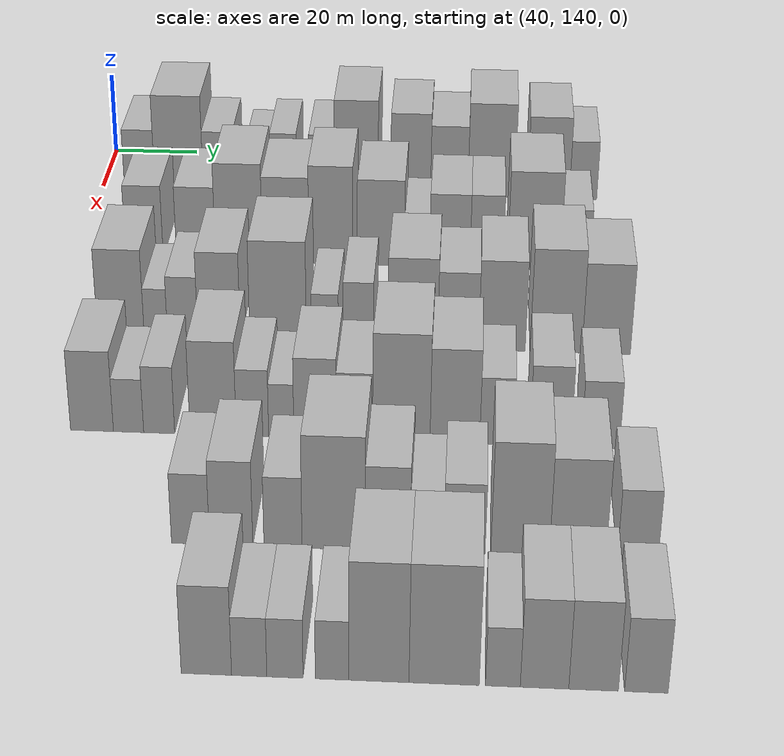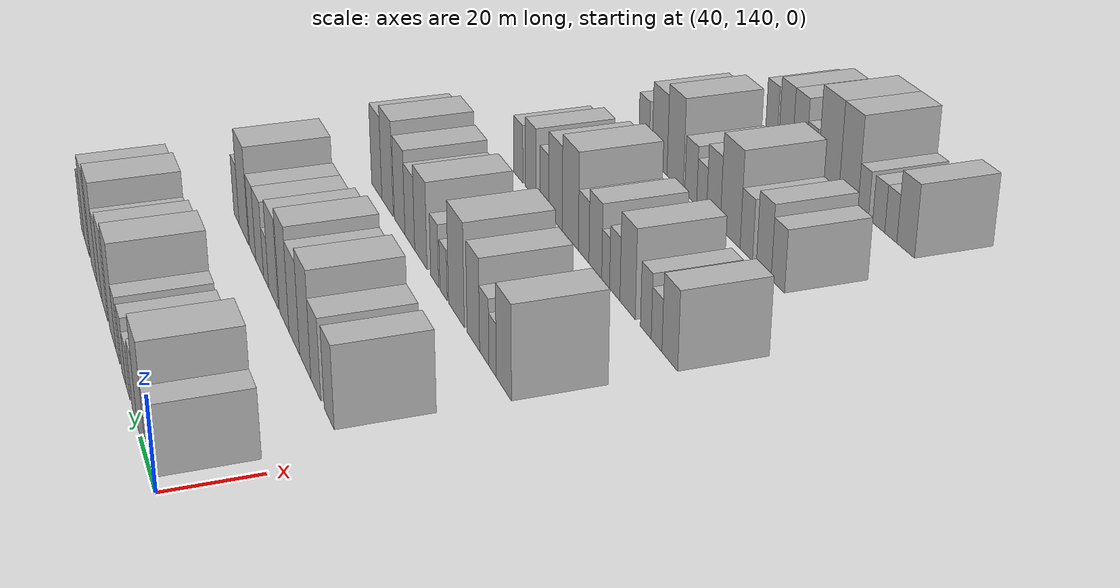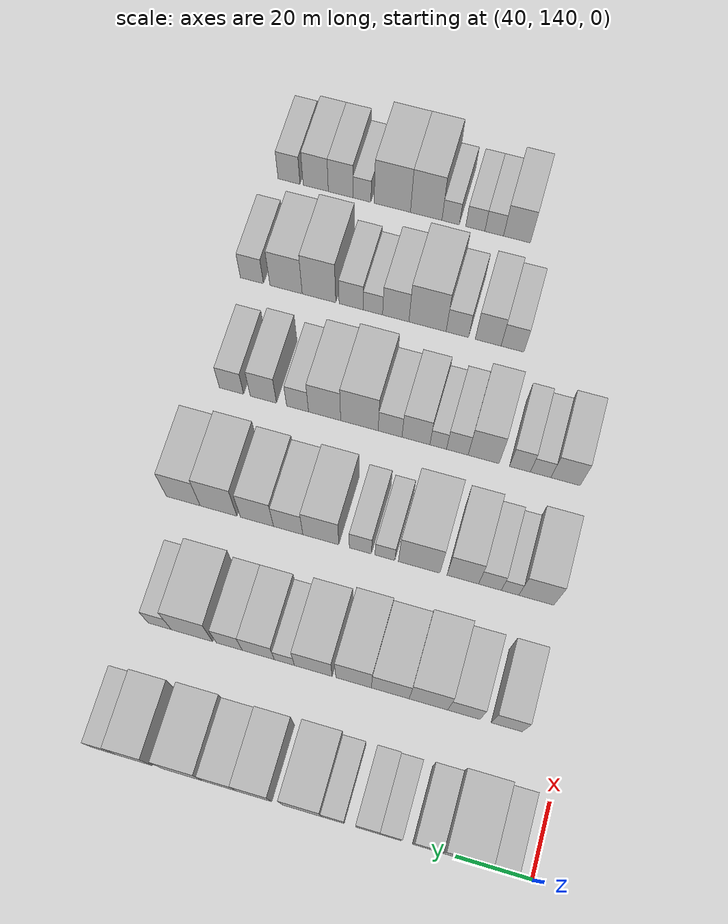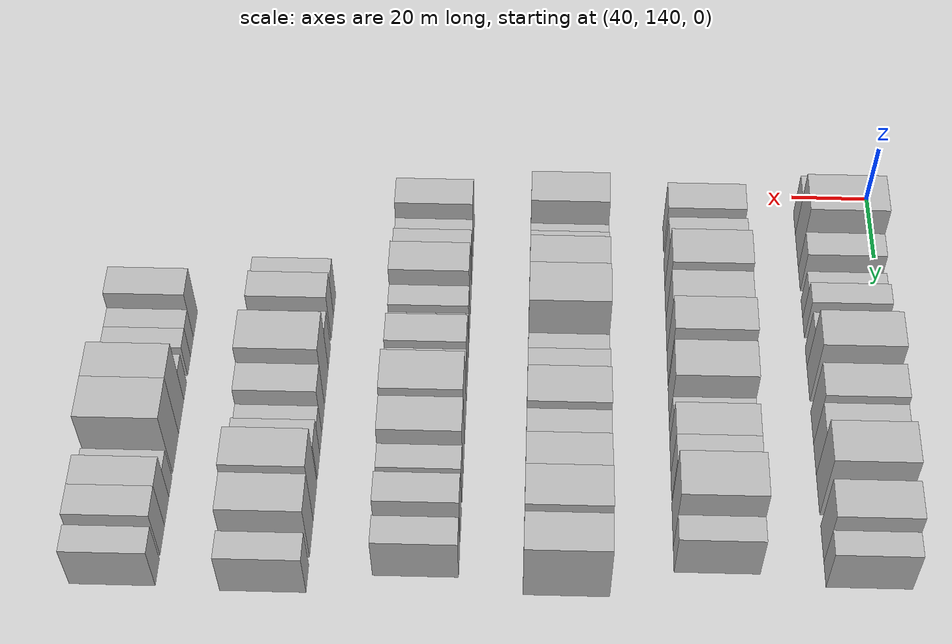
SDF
<sdf version="1.6">
 <world name="default">
  <model name="building_77">
   <static>1</static>
   <pose>50.0000 148.8166 0 0.000000 0.000000 0.000000</pose>
   <link name="link">
    <pose>0 0 7.50 0 0 0</pose>
    <collision name="collision"><geometry><box><size>20.0000 7.3474 15.0000</size></box></geometry></collision>
    <visual name="visual">
     <cast_shadows>0</cast_shadows>
     <geometry><box><size>20.0000 7.3474 15.0000</size></box></geometry>
     <material>
      <script>
       <uri>model://HANNAS_wall/materials/scripts</uri>
       <uri>model://HANNAS_wall/materials/textures</uri>
       <name>vrc/HANNAS_wall</name>
      </script>
     </material>
    </visual>
   </link>
  </model>
  <model name="building_78">
   <static>1</static>
   <pose>50.0000 158.2997 0 0.000000 0.000000 0.000000</pose>
   <link name="link">
    <pose>0 0 12.00 0 0 0</pose>
    <collision name="collision"><geometry><box><size>20.0000 11.6188 24.0000</size></box></geometry></collision>
    <visual name="visual">
     <cast_shadows>0</cast_shadows>
     <geometry><box><size>20.0000 11.6188 24.0000</size></box></geometry>
     <material>
      <script>
       <uri>model://HANNAS_wall/materials/scripts</uri>
       <uri>model://HANNAS_wall/materials/textures</uri>
       <name>vrc/HANNAS_wall</name>
      </script>
     </material>
    </visual>
   </link>
  </model>
  <model name="building_79">
   <static>1</static>
   <pose>50.0000 167.7539 0 0.000000 0.000000 0.000000</pose>
   <link name="link">
    <pose>0 0 7.50 0 0 0</pose>
    <collision name="collision"><geometry><box><size>20.0000 7.2897 15.0000</size></box></geometry></collision>
    <visual name="visual">
     <cast_shadows>0</cast_shadows>
     <geometry><box><size>20.0000 7.2897 15.0000</size></box></geometry>
     <material>
      <script>
       <uri>model://HANNAS_wall/materials/scripts</uri>
       <uri>model://HANNAS_wall/materials/textures</uri>
       <name>vrc/HANNAS_wall</name>
      </script>
     </material>
    </visual>
   </link>
  </model>
  <model name="building_80">
   <static>1</static>
   <pose>50.0000 177.3144 0 0.000000 0.000000 0.000000</pose>
   <link name="link">
    <pose>0 0 6.00 0 0 0</pose>
    <collision name="collision"><geometry><box><size>20.0000 5.8314 12.0000</size></box></geometry></collision>
    <visual name="visual">
     <cast_shadows>0</cast_shadows>
     <geometry><box><size>20.0000 5.8314 12.0000</size></box></geometry>
     <material>
      <script>
       <uri>model://HANNAS_wall/materials/scripts</uri>
       <uri>model://HANNAS_wall/materials/textures</uri>
       <name>vrc/HANNAS_wall</name>
      </script>
     </material>
    </visual>
   </link>
  </model>
  <model name="building_81">
   <static>1</static>
   <pose>50.0000 183.3508 0 0.000000 0.000000 0.000000</pose>
   <link name="link">
    <pose>0 0 7.50 0 0 0</pose>
    <collision name="collision"><geometry><box><size>20.0000 6.2415 15.0000</size></box></geometry></collision>
    <visual name="visual">
     <cast_shadows>0</cast_shadows>
     <geometry><box><size>20.0000 6.2415 15.0000</size></box></geometry>
     <material>
      <script>
       <uri>model://HANNAS_wall/materials/scripts</uri>
       <uri>model://HANNAS_wall/materials/textures</uri>
       <name>vrc/HANNAS_wall</name>
      </script>
     </material>
    </visual>
   </link>
  </model>
  <model name="building_82">
   <static>1</static>
   <pose>50.0000 192.4947 0 0.000000 0.000000 0.000000</pose>
   <link name="link">
    <pose>0 0 7.50 0 0 0</pose>
    <collision name="collision"><geometry><box><size>20.0000 6.0462 15.0000</size></box></geometry></collision>
    <visual name="visual">
     <cast_shadows>0</cast_shadows>
     <geometry><box><size>20.0000 6.0462 15.0000</size></box></geometry>
     <material>
      <script>
       <uri>model://HANNAS_wall/materials/scripts</uri>
       <uri>model://HANNAS_wall/materials/textures</uri>
       <name>vrc/HANNAS_wall</name>
      </script>
     </material>
    </visual>
   </link>
  </model>
  <model name="building_83">
   <static>1</static>
   <pose>50.0000 200.6942 0 0.000000 0.000000 0.000000</pose>
   <link name="link">
    <pose>0 0 12.00 0 0 0</pose>
    <collision name="collision"><geometry><box><size>20.0000 10.3529 24.0000</size></box></geometry></collision>
    <visual name="visual">
     <cast_shadows>0</cast_shadows>
     <geometry><box><size>20.0000 10.3529 24.0000</size></box></geometry>
     <material>
      <script>
       <uri>model://HANNAS_wall/materials/scripts</uri>
       <uri>model://HANNAS_wall/materials/textures</uri>
       <name>vrc/HANNAS_wall</name>
      </script>
     </material>
    </visual>
   </link>
  </model>
  <model name="building_84">
   <static>1</static>
   <pose>50.0000 213.6102 0 0.000000 0.000000 0.000000</pose>
   <link name="link">
    <pose>0 0 10.50 0 0 0</pose>
    <collision name="collision"><geometry><box><size>20.0000 9.4791 21.0000</size></box></geometry></collision>
    <visual name="visual">
     <cast_shadows>0</cast_shadows>
     <geometry><box><size>20.0000 9.4791 21.0000</size></box></geometry>
     <material>
      <script>
       <uri>model://HANNAS_wall/materials/scripts</uri>
       <uri>model://HANNAS_wall/materials/textures</uri>
       <name>vrc/HANNAS_wall</name>
      </script>
     </material>
    </visual>
   </link>
  </model>
  <model name="building_85">
   <static>1</static>
   <pose>50.0000 222.7649 0 0.000000 0.000000 0.000000</pose>
   <link name="link">
    <pose>0 0 9.00 0 0 0</pose>
    <collision name="collision"><geometry><box><size>20.0000 8.8303 18.0000</size></box></geometry></collision>
    <visual name="visual">
     <cast_shadows>0</cast_shadows>
     <geometry><box><size>20.0000 8.8303 18.0000</size></box></geometry>
     <material>
      <script>
       <uri>model://HANNAS_wall/materials/scripts</uri>
       <uri>model://HANNAS_wall/materials/textures</uri>
       <name>vrc/HANNAS_wall</name>
      </script>
     </material>
    </visual>
   </link>
  </model>
  <model name="building_86">
   <static>1</static>
   <pose>50.0000 232.7145 0 0.000000 0.000000 0.000000</pose>
   <link name="link">
    <pose>0 0 12.00 0 0 0</pose>
    <collision name="collision"><geometry><box><size>20.0000 11.0688 24.0000</size></box></geometry></collision>
    <visual name="visual">
     <cast_shadows>0</cast_shadows>
     <geometry><box><size>20.0000 11.0688 24.0000</size></box></geometry>
     <material>
      <script>
       <uri>model://HANNAS_wall/materials/scripts</uri>
       <uri>model://HANNAS_wall/materials/textures</uri>
       <name>vrc/HANNAS_wall</name>
      </script>
     </material>
    </visual>
   </link>
  </model>
  <model name="building_87">
   <static>1</static>
   <pose>50.0000 246.1983 0 0.000000 0.000000 0.000000</pose>
   <link name="link">
    <pose>0 0 10.50 0 0 0</pose>
    <collision name="collision"><geometry><box><size>20.0000 9.8989 21.0000</size></box></geometry></collision>
    <visual name="visual">
     <cast_shadows>0</cast_shadows>
     <geometry><box><size>20.0000 9.8989 21.0000</size></box></geometry>
     <material>
      <script>
       <uri>model://HANNAS_wall/materials/scripts</uri>
       <uri>model://HANNAS_wall/materials/textures</uri>
       <name>vrc/HANNAS_wall</name>
      </script>
     </material>
    </visual>
   </link>
  </model>
  <model name="building_88">
   <static>1</static>
   <pose>50.0000 254.3748 0 0.000000 0.000000 0.000000</pose>
   <link name="link">
    <pose>0 0 7.50 0 0 0</pose>
    <collision name="collision"><geometry><box><size>20.0000 6.4542 15.0000</size></box></geometry></collision>
    <visual name="visual">
     <cast_shadows>0</cast_shadows>
     <geometry><box><size>20.0000 6.4542 15.0000</size></box></geometry>
     <material>
      <script>
       <uri>model://HANNAS_wall/materials/scripts</uri>
       <uri>model://HANNAS_wall/materials/textures</uri>
       <name>vrc/HANNAS_wall</name>
      </script>
     </material>
    </visual>
   </link>
  </model>
  <model name="building_209">
   <static>1</static>
   <pose>85.0000 155.2938 0 0.000000 0.000000 0.000000</pose>
   <link name="link">
    <pose>0 0 9.00 0 0 0</pose>
    <collision name="collision"><geometry><box><size>20.0000 8.4235 18.0000</size></box></geometry></collision>
    <visual name="visual">
     <cast_shadows>0</cast_shadows>
     <geometry><box><size>20.0000 8.4235 18.0000</size></box></geometry>
     <material>
      <script>
       <uri>model://HANNAS_wall/materials/scripts</uri>
       <uri>model://HANNAS_wall/materials/textures</uri>
       <name>vrc/HANNAS_wall</name>
      </script>
     </material>
    </visual>
   </link>
  </model>
  <model name="building_210">
   <static>1</static>
   <pose>85.0000 166.8836 0 0.000000 0.000000 0.000000</pose>
   <link name="link">
    <pose>0 0 9.00 0 0 0</pose>
    <collision name="collision"><geometry><box><size>20.0000 8.7559 18.0000</size></box></geometry></collision>
    <visual name="visual">
     <cast_shadows>0</cast_shadows>
     <geometry><box><size>20.0000 8.7559 18.0000</size></box></geometry>
     <material>
      <script>
       <uri>model://HANNAS_wall/materials/scripts</uri>
       <uri>model://HANNAS_wall/materials/textures</uri>
       <name>vrc/HANNAS_wall</name>
      </script>
     </material>
    </visual>
   </link>
  </model>
  <model name="building_211">
   <static>1</static>
   <pose>85.0000 176.5333 0 0.000000 0.000000 0.000000</pose>
   <link name="link">
    <pose>0 0 12.00 0 0 0</pose>
    <collision name="collision"><geometry><box><size>20.0000 10.5436 24.0000</size></box></geometry></collision>
    <visual name="visual">
     <cast_shadows>0</cast_shadows>
     <geometry><box><size>20.0000 10.5436 24.0000</size></box></geometry>
     <material>
      <script>
       <uri>model://HANNAS_wall/materials/scripts</uri>
       <uri>model://HANNAS_wall/materials/textures</uri>
       <name>vrc/HANNAS_wall</name>
      </script>
     </material>
    </visual>
   </link>
  </model>
  <model name="building_212">
   <static>1</static>
   <pose>85.0000 186.9977 0 0.000000 0.000000 0.000000</pose>
   <link name="link">
    <pose>0 0 10.50 0 0 0</pose>
    <collision name="collision"><geometry><box><size>20.0000 10.3853 21.0000</size></box></geometry></collision>
    <visual name="visual">
     <cast_shadows>0</cast_shadows>
     <geometry><box><size>20.0000 10.3853 21.0000</size></box></geometry>
     <material>
      <script>
       <uri>model://HANNAS_wall/materials/scripts</uri>
       <uri>model://HANNAS_wall/materials/textures</uri>
       <name>vrc/HANNAS_wall</name>
      </script>
     </material>
    </visual>
   </link>
  </model>
  <model name="building_213">
   <static>1</static>
   <pose>85.0000 197.0898 0 0.000000 0.000000 0.000000</pose>
   <link name="link">
    <pose>0 0 12.00 0 0 0</pose>
    <collision name="collision"><geometry><box><size>20.0000 9.7988 24.0000</size></box></geometry></collision>
    <visual name="visual">
     <cast_shadows>0</cast_shadows>
     <geometry><box><size>20.0000 9.7988 24.0000</size></box></geometry>
     <material>
      <script>
       <uri>model://HANNAS_wall/materials/scripts</uri>
       <uri>model://HANNAS_wall/materials/textures</uri>
       <name>vrc/HANNAS_wall</name>
      </script>
     </material>
    </visual>
   </link>
  </model>
  <model name="building_214">
   <static>1</static>
   <pose>85.0000 208.2233 0 0.000000 0.000000 0.000000</pose>
   <link name="link">
    <pose>0 0 10.50 0 0 0</pose>
    <collision name="collision"><geometry><box><size>20.0000 10.4682 21.0000</size></box></geometry></collision>
    <visual name="visual">
     <cast_shadows>0</cast_shadows>
     <geometry><box><size>20.0000 10.4682 21.0000</size></box></geometry>
     <material>
      <script>
       <uri>model://HANNAS_wall/materials/scripts</uri>
       <uri>model://HANNAS_wall/materials/textures</uri>
       <name>vrc/HANNAS_wall</name>
      </script>
     </material>
    </visual>
   </link>
  </model>
  <model name="building_215">
   <static>1</static>
   <pose>85.0000 216.2592 0 0.000000 0.000000 0.000000</pose>
   <link name="link">
    <pose>0 0 6.00 0 0 0</pose>
    <collision name="collision"><geometry><box><size>20.0000 5.6036 12.0000</size></box></geometry></collision>
    <visual name="visual">
     <cast_shadows>0</cast_shadows>
     <geometry><box><size>20.0000 5.6036 12.0000</size></box></geometry>
     <material>
      <script>
       <uri>model://HANNAS_wall/materials/scripts</uri>
       <uri>model://HANNAS_wall/materials/textures</uri>
       <name>vrc/HANNAS_wall</name>
      </script>
     </material>
    </visual>
   </link>
  </model>
  <model name="building_216">
   <static>1</static>
   <pose>85.0000 223.5520 0 0.000000 0.000000 0.000000</pose>
   <link name="link">
    <pose>0 0 9.00 0 0 0</pose>
    <collision name="collision"><geometry><box><size>20.0000 8.9820 18.0000</size></box></geometry></collision>
    <visual name="visual">
     <cast_shadows>0</cast_shadows>
     <geometry><box><size>20.0000 8.9820 18.0000</size></box></geometry>
     <material>
      <script>
       <uri>model://HANNAS_wall/materials/scripts</uri>
       <uri>model://HANNAS_wall/materials/textures</uri>
       <name>vrc/HANNAS_wall</name>
      </script>
     </material>
    </visual>
   </link>
  </model>
  <model name="building_217">
   <static>1</static>
   <pose>85.0000 231.6948 0 0.000000 0.000000 0.000000</pose>
   <link name="link">
    <pose>0 0 9.00 0 0 0</pose>
    <collision name="collision"><geometry><box><size>20.0000 7.3036 18.0000</size></box></geometry></collision>
    <visual name="visual">
     <cast_shadows>0</cast_shadows>
     <geometry><box><size>20.0000 7.3036 18.0000</size></box></geometry>
     <material>
      <script>
       <uri>model://HANNAS_wall/materials/scripts</uri>
       <uri>model://HANNAS_wall/materials/textures</uri>
       <name>vrc/HANNAS_wall</name>
      </script>
     </material>
    </visual>
   </link>
  </model>
  <model name="building_218">
   <static>1</static>
   <pose>85.0000 242.1939 0 0.000000 0.000000 0.000000</pose>
   <link name="link">
    <pose>0 0 12.00 0 0 0</pose>
    <collision name="collision"><geometry><box><size>20.0000 11.6947 24.0000</size></box></geometry></collision>
    <visual name="visual">
     <cast_shadows>0</cast_shadows>
     <geometry><box><size>20.0000 11.6947 24.0000</size></box></geometry>
     <material>
      <script>
       <uri>model://HANNAS_wall/materials/scripts</uri>
       <uri>model://HANNAS_wall/materials/textures</uri>
       <name>vrc/HANNAS_wall</name>
      </script>
     </material>
    </visual>
   </link>
  </model>
  <model name="building_219">
   <static>1</static>
   <pose>85.0000 251.3400 0 0.000000 0.000000 0.000000</pose>
   <link name="link">
    <pose>0 0 7.50 0 0 0</pose>
    <collision name="collision"><geometry><box><size>20.0000 6.5974 15.0000</size></box></geometry></collision>
    <visual name="visual">
     <cast_shadows>0</cast_shadows>
     <geometry><box><size>20.0000 6.5974 15.0000</size></box></geometry>
     <material>
      <script>
       <uri>model://HANNAS_wall/materials/scripts</uri>
       <uri>model://HANNAS_wall/materials/textures</uri>
       <name>vrc/HANNAS_wall</name>
      </script>
     </material>
    </visual>
   </link>
  </model>
  <model name="building_333">
   <static>1</static>
   <pose>120.0000 155.6423 0 0.000000 0.000000 0.000000</pose>
   <link name="link">
    <pose>0 0 10.50 0 0 0</pose>
    <collision name="collision"><geometry><box><size>20.0000 9.7890 21.0000</size></box></geometry></collision>
    <visual name="visual">
     <cast_shadows>0</cast_shadows>
     <geometry><box><size>20.0000 9.7890 21.0000</size></box></geometry>
     <material>
      <script>
       <uri>model://HANNAS_wall/materials/scripts</uri>
       <uri>model://HANNAS_wall/materials/textures</uri>
       <name>vrc/HANNAS_wall</name>
      </script>
     </material>
    </visual>
   </link>
  </model>
  <model name="building_334">
   <static>1</static>
   <pose>120.0000 162.9802 0 0.000000 0.000000 0.000000</pose>
   <link name="link">
    <pose>0 0 6.00 0 0 0</pose>
    <collision name="collision"><geometry><box><size>20.0000 4.8869 12.0000</size></box></geometry></collision>
    <visual name="visual">
     <cast_shadows>0</cast_shadows>
     <geometry><box><size>20.0000 4.8869 12.0000</size></box></geometry>
     <material>
      <script>
       <uri>model://HANNAS_wall/materials/scripts</uri>
       <uri>model://HANNAS_wall/materials/textures</uri>
       <name>vrc/HANNAS_wall</name>
      </script>
     </material>
    </visual>
   </link>
  </model>
  <model name="building_335">
   <static>1</static>
   <pose>120.0000 168.6081 0 0.000000 0.000000 0.000000</pose>
   <link name="link">
    <pose>0 0 7.50 0 0 0</pose>
    <collision name="collision"><geometry><box><size>20.0000 6.3688 15.0000</size></box></geometry></collision>
    <visual name="visual">
     <cast_shadows>0</cast_shadows>
     <geometry><box><size>20.0000 6.3688 15.0000</size></box></geometry>
     <material>
      <script>
       <uri>model://HANNAS_wall/materials/scripts</uri>
       <uri>model://HANNAS_wall/materials/textures</uri>
       <name>vrc/HANNAS_wall</name>
      </script>
     </material>
    </visual>
   </link>
  </model>
  <model name="building_336">
   <static>1</static>
   <pose>120.0000 176.2318 0 0.000000 0.000000 0.000000</pose>
   <link name="link">
    <pose>0 0 10.50 0 0 0</pose>
    <collision name="collision"><geometry><box><size>20.0000 8.8787 21.0000</size></box></geometry></collision>
    <visual name="visual">
     <cast_shadows>0</cast_shadows>
     <geometry><box><size>20.0000 8.8787 21.0000</size></box></geometry>
     <material>
      <script>
       <uri>model://HANNAS_wall/materials/scripts</uri>
       <uri>model://HANNAS_wall/materials/textures</uri>
       <name>vrc/HANNAS_wall</name>
      </script>
     </material>
    </visual>
   </link>
  </model>
  <model name="building_337">
   <static>1</static>
   <pose>120.0000 188.5641 0 0.000000 0.000000 0.000000</pose>
   <link name="link">
    <pose>0 0 12.00 0 0 0</pose>
    <collision name="collision"><geometry><box><size>20.0000 11.7859 24.0000</size></box></geometry></collision>
    <visual name="visual">
     <cast_shadows>0</cast_shadows>
     <geometry><box><size>20.0000 11.7859 24.0000</size></box></geometry>
     <material>
      <script>
       <uri>model://HANNAS_wall/materials/scripts</uri>
       <uri>model://HANNAS_wall/materials/textures</uri>
       <name>vrc/HANNAS_wall</name>
      </script>
     </material>
    </visual>
   </link>
  </model>
  <model name="building_338">
   <static>1</static>
   <pose>120.0000 198.2838 0 0.000000 0.000000 0.000000</pose>
   <link name="link">
    <pose>0 0 6.00 0 0 0</pose>
    <collision name="collision"><geometry><box><size>20.0000 5.6536 12.0000</size></box></geometry></collision>
    <visual name="visual">
     <cast_shadows>0</cast_shadows>
     <geometry><box><size>20.0000 5.6536 12.0000</size></box></geometry>
     <material>
      <script>
       <uri>model://HANNAS_wall/materials/scripts</uri>
       <uri>model://HANNAS_wall/materials/textures</uri>
       <name>vrc/HANNAS_wall</name>
      </script>
     </material>
    </visual>
   </link>
  </model>
  <model name="building_339">
   <static>1</static>
   <pose>120.0000 205.2658 0 0.000000 0.000000 0.000000</pose>
   <link name="link">
    <pose>0 0 7.50 0 0 0</pose>
    <collision name="collision"><geometry><box><size>20.0000 6.3103 15.0000</size></box></geometry></collision>
    <visual name="visual">
     <cast_shadows>0</cast_shadows>
     <geometry><box><size>20.0000 6.3103 15.0000</size></box></geometry>
     <material>
      <script>
       <uri>model://HANNAS_wall/materials/scripts</uri>
       <uri>model://HANNAS_wall/materials/textures</uri>
       <name>vrc/HANNAS_wall</name>
      </script>
     </material>
    </visual>
   </link>
  </model>
  <model name="building_340">
   <static>1</static>
   <pose>120.0000 216.5890 0 0.000000 0.000000 0.000000</pose>
   <link name="link">
    <pose>0 0 10.50 0 0 0</pose>
    <collision name="collision"><geometry><box><size>20.0000 10.3362 21.0000</size></box></geometry></collision>
    <visual name="visual">
     <cast_shadows>0</cast_shadows>
     <geometry><box><size>20.0000 10.3362 21.0000</size></box></geometry>
     <material>
      <script>
       <uri>model://HANNAS_wall/materials/scripts</uri>
       <uri>model://HANNAS_wall/materials/textures</uri>
       <name>vrc/HANNAS_wall</name>
      </script>
     </material>
    </visual>
   </link>
  </model>
  <model name="building_341">
   <static>1</static>
   <pose>120.0000 225.9843 0 0.000000 0.000000 0.000000</pose>
   <link name="link">
    <pose>0 0 9.00 0 0 0</pose>
    <collision name="collision"><geometry><box><size>20.0000 8.4542 18.0000</size></box></geometry></collision>
    <visual name="visual">
     <cast_shadows>0</cast_shadows>
     <geometry><box><size>20.0000 8.4542 18.0000</size></box></geometry>
     <material>
      <script>
       <uri>model://HANNAS_wall/materials/scripts</uri>
       <uri>model://HANNAS_wall/materials/textures</uri>
       <name>vrc/HANNAS_wall</name>
      </script>
     </material>
    </visual>
   </link>
  </model>
  <model name="building_342">
   <static>1</static>
   <pose>120.0000 235.0246 0 0.000000 0.000000 0.000000</pose>
   <link name="link">
    <pose>0 0 10.50 0 0 0</pose>
    <collision name="collision"><geometry><box><size>20.0000 9.6266 21.0000</size></box></geometry></collision>
    <visual name="visual">
     <cast_shadows>0</cast_shadows>
     <geometry><box><size>20.0000 9.6266 21.0000</size></box></geometry>
     <material>
      <script>
       <uri>model://HANNAS_wall/materials/scripts</uri>
       <uri>model://HANNAS_wall/materials/textures</uri>
       <name>vrc/HANNAS_wall</name>
      </script>
     </material>
    </visual>
   </link>
  </model>
  <model name="building_343">
   <static>1</static>
   <pose>120.0000 246.1927 0 0.000000 0.000000 0.000000</pose>
   <link name="link">
    <pose>0 0 12.00 0 0 0</pose>
    <collision name="collision"><geometry><box><size>20.0000 10.7095 24.0000</size></box></geometry></collision>
    <visual name="visual">
     <cast_shadows>0</cast_shadows>
     <geometry><box><size>20.0000 10.7095 24.0000</size></box></geometry>
     <material>
      <script>
       <uri>model://HANNAS_wall/materials/scripts</uri>
       <uri>model://HANNAS_wall/materials/textures</uri>
       <name>vrc/HANNAS_wall</name>
      </script>
     </material>
    </visual>
   </link>
  </model>
  <model name="building_344">
   <static>1</static>
   <pose>120.0000 256.5105 0 0.000000 0.000000 0.000000</pose>
   <link name="link">
    <pose>0 0 10.50 0 0 0</pose>
    <collision name="collision"><geometry><box><size>20.0000 9.9260 21.0000</size></box></geometry></collision>
    <visual name="visual">
     <cast_shadows>0</cast_shadows>
     <geometry><box><size>20.0000 9.9260 21.0000</size></box></geometry>
     <material>
      <script>
       <uri>model://HANNAS_wall/materials/scripts</uri>
       <uri>model://HANNAS_wall/materials/textures</uri>
       <name>vrc/HANNAS_wall</name>
      </script>
     </material>
    </visual>
   </link>
  </model>
  <model name="building_459">
   <static>1</static>
   <pose>155.0000 155.5823 0 0.000000 0.000000 0.000000</pose>
   <link name="link">
    <pose>0 0 9.00 0 0 0</pose>
    <collision name="collision"><geometry><box><size>20.0000 8.3863 18.0000</size></box></geometry></collision>
    <visual name="visual">
     <cast_shadows>0</cast_shadows>
     <geometry><box><size>20.0000 8.3863 18.0000</size></box></geometry>
     <material>
      <script>
       <uri>model://HANNAS_wall/materials/scripts</uri>
       <uri>model://HANNAS_wall/materials/textures</uri>
       <name>vrc/HANNAS_wall</name>
      </script>
     </material>
    </visual>
   </link>
  </model>
  <model name="building_460">
   <static>1</static>
   <pose>155.0000 162.7305 0 0.000000 0.000000 0.000000</pose>
   <link name="link">
    <pose>0 0 6.00 0 0 0</pose>
    <collision name="collision"><geometry><box><size>20.0000 5.9101 12.0000</size></box></geometry></collision>
    <visual name="visual">
     <cast_shadows>0</cast_shadows>
     <geometry><box><size>20.0000 5.9101 12.0000</size></box></geometry>
     <material>
      <script>
       <uri>model://HANNAS_wall/materials/scripts</uri>
       <uri>model://HANNAS_wall/materials/textures</uri>
       <name>vrc/HANNAS_wall</name>
      </script>
     </material>
    </visual>
   </link>
  </model>
  <model name="building_461">
   <static>1</static>
   <pose>155.0000 168.7059 0 0.000000 0.000000 0.000000</pose>
   <link name="link">
    <pose>0 0 7.50 0 0 0</pose>
    <collision name="collision"><geometry><box><size>20.0000 6.0407 15.0000</size></box></geometry></collision>
    <visual name="visual">
     <cast_shadows>0</cast_shadows>
     <geometry><box><size>20.0000 6.0407 15.0000</size></box></geometry>
     <material>
      <script>
       <uri>model://HANNAS_wall/materials/scripts</uri>
       <uri>model://HANNAS_wall/materials/textures</uri>
       <name>vrc/HANNAS_wall</name>
      </script>
     </material>
    </visual>
   </link>
  </model>
  <model name="building_462">
   <static>1</static>
   <pose>155.0000 179.2215 0 0.000000 0.000000 0.000000</pose>
   <link name="link">
    <pose>0 0 10.50 0 0 0</pose>
    <collision name="collision"><geometry><box><size>20.0000 8.9905 21.0000</size></box></geometry></collision>
    <visual name="visual">
     <cast_shadows>0</cast_shadows>
     <geometry><box><size>20.0000 8.9905 21.0000</size></box></geometry>
     <material>
      <script>
       <uri>model://HANNAS_wall/materials/scripts</uri>
       <uri>model://HANNAS_wall/materials/textures</uri>
       <name>vrc/HANNAS_wall</name>
      </script>
     </material>
    </visual>
   </link>
  </model>
  <model name="building_463">
   <static>1</static>
   <pose>155.0000 186.8588 0 0.000000 0.000000 0.000000</pose>
   <link name="link">
    <pose>0 0 7.50 0 0 0</pose>
    <collision name="collision"><geometry><box><size>20.0000 6.2841 15.0000</size></box></geometry></collision>
    <visual name="visual">
     <cast_shadows>0</cast_shadows>
     <geometry><box><size>20.0000 6.2841 15.0000</size></box></geometry>
     <material>
      <script>
       <uri>model://HANNAS_wall/materials/scripts</uri>
       <uri>model://HANNAS_wall/materials/textures</uri>
       <name>vrc/HANNAS_wall</name>
      </script>
     </material>
    </visual>
   </link>
  </model>
  <model name="building_464">
   <static>1</static>
   <pose>155.0000 192.4380 0 0.000000 0.000000 0.000000</pose>
   <link name="link">
    <pose>0 0 6.00 0 0 0</pose>
    <collision name="collision"><geometry><box><size>20.0000 4.8743 12.0000</size></box></geometry></collision>
    <visual name="visual">
     <cast_shadows>0</cast_shadows>
     <geometry><box><size>20.0000 4.8743 12.0000</size></box></geometry>
     <material>
      <script>
       <uri>model://HANNAS_wall/materials/scripts</uri>
       <uri>model://HANNAS_wall/materials/textures</uri>
       <name>vrc/HANNAS_wall</name>
      </script>
     </material>
    </visual>
   </link>
  </model>
  <model name="building_465">
   <static>1</static>
   <pose>155.0000 198.9682 0 0.000000 0.000000 0.000000</pose>
   <link name="link">
    <pose>0 0 9.00 0 0 0</pose>
    <collision name="collision"><geometry><box><size>20.0000 8.1862 18.0000</size></box></geometry></collision>
    <visual name="visual">
     <cast_shadows>0</cast_shadows>
     <geometry><box><size>20.0000 8.1862 18.0000</size></box></geometry>
     <material>
      <script>
       <uri>model://HANNAS_wall/materials/scripts</uri>
       <uri>model://HANNAS_wall/materials/textures</uri>
       <name>vrc/HANNAS_wall</name>
      </script>
     </material>
    </visual>
   </link>
  </model>
  <model name="building_466">
   <static>1</static>
   <pose>155.0000 206.5640 0 0.000000 0.000000 0.000000</pose>
   <link name="link">
    <pose>0 0 7.50 0 0 0</pose>
    <collision name="collision"><geometry><box><size>20.0000 7.0054 15.0000</size></box></geometry></collision>
    <visual name="visual">
     <cast_shadows>0</cast_shadows>
     <geometry><box><size>20.0000 7.0054 15.0000</size></box></geometry>
     <material>
      <script>
       <uri>model://HANNAS_wall/materials/scripts</uri>
       <uri>model://HANNAS_wall/materials/textures</uri>
       <name>vrc/HANNAS_wall</name>
      </script>
     </material>
    </visual>
   </link>
  </model>
  <model name="building_467">
   <static>1</static>
   <pose>155.0000 215.6028 0 0.000000 0.000000 0.000000</pose>
   <link name="link">
    <pose>0 0 12.00 0 0 0</pose>
    <collision name="collision"><geometry><box><size>20.0000 11.0722 24.0000</size></box></geometry></collision>
    <visual name="visual">
     <cast_shadows>0</cast_shadows>
     <geometry><box><size>20.0000 11.0722 24.0000</size></box></geometry>
     <material>
      <script>
       <uri>model://HANNAS_wall/materials/scripts</uri>
       <uri>model://HANNAS_wall/materials/textures</uri>
       <name>vrc/HANNAS_wall</name>
      </script>
     </material>
    </visual>
   </link>
  </model>
  <model name="building_468">
   <static>1</static>
   <pose>155.0000 225.9090 0 0.000000 0.000000 0.000000</pose>
   <link name="link">
    <pose>0 0 10.50 0 0 0</pose>
    <collision name="collision"><geometry><box><size>20.0000 9.5402 21.0000</size></box></geometry></collision>
    <visual name="visual">
     <cast_shadows>0</cast_shadows>
     <geometry><box><size>20.0000 9.5402 21.0000</size></box></geometry>
     <material>
      <script>
       <uri>model://HANNAS_wall/materials/scripts</uri>
       <uri>model://HANNAS_wall/materials/textures</uri>
       <name>vrc/HANNAS_wall</name>
      </script>
     </material>
    </visual>
   </link>
  </model>
  <model name="building_469">
   <static>1</static>
   <pose>155.0000 233.9478 0 0.000000 0.000000 0.000000</pose>
   <link name="link">
    <pose>0 0 7.50 0 0 0</pose>
    <collision name="collision"><geometry><box><size>20.0000 6.5373 15.0000</size></box></geometry></collision>
    <visual name="visual">
     <cast_shadows>0</cast_shadows>
     <geometry><box><size>20.0000 6.5373 15.0000</size></box></geometry>
     <material>
      <script>
       <uri>model://HANNAS_wall/materials/scripts</uri>
       <uri>model://HANNAS_wall/materials/textures</uri>
       <name>vrc/HANNAS_wall</name>
      </script>
     </material>
    </visual>
   </link>
  </model>
  <model name="building_470">
   <static>1</static>
   <pose>155.0000 244.1620 0 0.000000 0.000000 0.000000</pose>
   <link name="link">
    <pose>0 0 9.00 0 0 0</pose>
    <collision name="collision"><geometry><box><size>20.0000 7.8913 18.0000</size></box></geometry></collision>
    <visual name="visual">
     <cast_shadows>0</cast_shadows>
     <geometry><box><size>20.0000 7.8913 18.0000</size></box></geometry>
     <material>
      <script>
       <uri>model://HANNAS_wall/materials/scripts</uri>
       <uri>model://HANNAS_wall/materials/textures</uri>
       <name>vrc/HANNAS_wall</name>
      </script>
     </material>
    </visual>
   </link>
  </model>
  <model name="building_471">
   <static>1</static>
   <pose>155.0000 253.7512 0 0.000000 0.000000 0.000000</pose>
   <link name="link">
    <pose>0 0 7.50 0 0 0</pose>
    <collision name="collision"><geometry><box><size>20.0000 7.2871 15.0000</size></box></geometry></collision>
    <visual name="visual">
     <cast_shadows>0</cast_shadows>
     <geometry><box><size>20.0000 7.2871 15.0000</size></box></geometry>
     <material>
      <script>
       <uri>model://HANNAS_wall/materials/scripts</uri>
       <uri>model://HANNAS_wall/materials/textures</uri>
       <name>vrc/HANNAS_wall</name>
      </script>
     </material>
    </visual>
   </link>
  </model>
  <model name="building_588">
   <static>1</static>
   <pose>190.0000 179.4015 0 0.000000 0.000000 0.000000</pose>
   <link name="link">
    <pose>0 0 7.50 0 0 0</pose>
    <collision name="collision"><geometry><box><size>20.0000 6.8202 15.0000</size></box></geometry></collision>
    <visual name="visual">
     <cast_shadows>0</cast_shadows>
     <geometry><box><size>20.0000 6.8202 15.0000</size></box></geometry>
     <material>
      <script>
       <uri>model://HANNAS_wall/materials/scripts</uri>
       <uri>model://HANNAS_wall/materials/textures</uri>
       <name>vrc/HANNAS_wall</name>
      </script>
     </material>
    </visual>
   </link>
  </model>
  <model name="building_589">
   <static>1</static>
   <pose>190.0000 186.6882 0 0.000000 0.000000 0.000000</pose>
   <link name="link">
    <pose>0 0 9.00 0 0 0</pose>
    <collision name="collision"><geometry><box><size>20.0000 7.7532 18.0000</size></box></geometry></collision>
    <visual name="visual">
     <cast_shadows>0</cast_shadows>
     <geometry><box><size>20.0000 7.7532 18.0000</size></box></geometry>
     <material>
      <script>
       <uri>model://HANNAS_wall/materials/scripts</uri>
       <uri>model://HANNAS_wall/materials/textures</uri>
       <name>vrc/HANNAS_wall</name>
      </script>
     </material>
    </visual>
   </link>
  </model>
  <model name="building_590">
   <static>1</static>
   <pose>190.0000 195.9600 0 0.000000 0.000000 0.000000</pose>
   <link name="link">
    <pose>0 0 7.50 0 0 0</pose>
    <collision name="collision"><geometry><box><size>20.0000 6.7904 15.0000</size></box></geometry></collision>
    <visual name="visual">
     <cast_shadows>0</cast_shadows>
     <geometry><box><size>20.0000 6.7904 15.0000</size></box></geometry>
     <material>
      <script>
       <uri>model://HANNAS_wall/materials/scripts</uri>
       <uri>model://HANNAS_wall/materials/textures</uri>
       <name>vrc/HANNAS_wall</name>
      </script>
     </material>
    </visual>
   </link>
  </model>
  <model name="building_591">
   <static>1</static>
   <pose>190.0000 204.9752 0 0.000000 0.000000 0.000000</pose>
   <link name="link">
    <pose>0 0 12.00 0 0 0</pose>
    <collision name="collision"><geometry><box><size>20.0000 11.2400 24.0000</size></box></geometry></collision>
    <visual name="visual">
     <cast_shadows>0</cast_shadows>
     <geometry><box><size>20.0000 11.2400 24.0000</size></box></geometry>
     <material>
      <script>
       <uri>model://HANNAS_wall/materials/scripts</uri>
       <uri>model://HANNAS_wall/materials/textures</uri>
       <name>vrc/HANNAS_wall</name>
      </script>
     </material>
    </visual>
   </link>
  </model>
  <model name="building_592">
   <static>1</static>
   <pose>190.0000 214.5877 0 0.000000 0.000000 0.000000</pose>
   <link name="link">
    <pose>0 0 9.00 0 0 0</pose>
    <collision name="collision"><geometry><box><size>20.0000 7.9849 18.0000</size></box></geometry></collision>
    <visual name="visual">
     <cast_shadows>0</cast_shadows>
     <geometry><box><size>20.0000 7.9849 18.0000</size></box></geometry>
     <material>
      <script>
       <uri>model://HANNAS_wall/materials/scripts</uri>
       <uri>model://HANNAS_wall/materials/textures</uri>
       <name>vrc/HANNAS_wall</name>
      </script>
     </material>
    </visual>
   </link>
  </model>
  <model name="building_593">
   <static>1</static>
   <pose>190.0000 221.5490 0 0.000000 0.000000 0.000000</pose>
   <link name="link">
    <pose>0 0 6.00 0 0 0</pose>
    <collision name="collision"><geometry><box><size>20.0000 5.9377 12.0000</size></box></geometry></collision>
    <visual name="visual">
     <cast_shadows>0</cast_shadows>
     <geometry><box><size>20.0000 5.9377 12.0000</size></box></geometry>
     <material>
      <script>
       <uri>model://HANNAS_wall/materials/scripts</uri>
       <uri>model://HANNAS_wall/materials/textures</uri>
       <name>vrc/HANNAS_wall</name>
      </script>
     </material>
    </visual>
   </link>
  </model>
  <model name="building_594">
   <static>1</static>
   <pose>190.0000 228.1875 0 0.000000 0.000000 0.000000</pose>
   <link name="link">
    <pose>0 0 7.50 0 0 0</pose>
    <collision name="collision"><geometry><box><size>20.0000 7.3394 15.0000</size></box></geometry></collision>
    <visual name="visual">
     <cast_shadows>0</cast_shadows>
     <geometry><box><size>20.0000 7.3394 15.0000</size></box></geometry>
     <material>
      <script>
       <uri>model://HANNAS_wall/materials/scripts</uri>
       <uri>model://HANNAS_wall/materials/textures</uri>
       <name>vrc/HANNAS_wall</name>
      </script>
     </material>
    </visual>
   </link>
  </model>
  <model name="building_595">
   <static>1</static>
   <pose>190.0000 238.0186 0 0.000000 0.000000 0.000000</pose>
   <link name="link">
    <pose>0 0 12.00 0 0 0</pose>
    <collision name="collision"><geometry><box><size>20.0000 10.3228 24.0000</size></box></geometry></collision>
    <visual name="visual">
     <cast_shadows>0</cast_shadows>
     <geometry><box><size>20.0000 10.3228 24.0000</size></box></geometry>
     <material>
      <script>
       <uri>model://HANNAS_wall/materials/scripts</uri>
       <uri>model://HANNAS_wall/materials/textures</uri>
       <name>vrc/HANNAS_wall</name>
      </script>
     </material>
    </visual>
   </link>
  </model>
  <model name="building_596">
   <static>1</static>
   <pose>190.0000 248.1638 0 0.000000 0.000000 0.000000</pose>
   <link name="link">
    <pose>0 0 10.50 0 0 0</pose>
    <collision name="collision"><geometry><box><size>20.0000 9.9676 21.0000</size></box></geometry></collision>
    <visual name="visual">
     <cast_shadows>0</cast_shadows>
     <geometry><box><size>20.0000 9.9676 21.0000</size></box></geometry>
     <material>
      <script>
       <uri>model://HANNAS_wall/materials/scripts</uri>
       <uri>model://HANNAS_wall/materials/textures</uri>
       <name>vrc/HANNAS_wall</name>
      </script>
     </material>
    </visual>
   </link>
  </model>
  <model name="building_597">
   <static>1</static>
   <pose>190.0000 258.7179 0 0.000000 0.000000 0.000000</pose>
   <link name="link">
    <pose>0 0 7.50 0 0 0</pose>
    <collision name="collision"><geometry><box><size>20.0000 7.1406 15.0000</size></box></geometry></collision>
    <visual name="visual">
     <cast_shadows>0</cast_shadows>
     <geometry><box><size>20.0000 7.1406 15.0000</size></box></geometry>
     <material>
      <script>
       <uri>model://HANNAS_wall/materials/scripts</uri>
       <uri>model://HANNAS_wall/materials/textures</uri>
       <name>vrc/HANNAS_wall</name>
      </script>
     </material>
    </visual>
   </link>
  </model>
  <model name="building_707">
   <static>1</static>
   <pose>225.0000 186.5883 0 0.000000 0.000000 0.000000</pose>
   <link name="link">
    <pose>0 0 9.00 0 0 0</pose>
    <collision name="collision"><geometry><box><size>20.0000 8.2702 18.0000</size></box></geometry></collision>
    <visual name="visual">
     <cast_shadows>0</cast_shadows>
     <geometry><box><size>20.0000 8.2702 18.0000</size></box></geometry>
     <material>
      <script>
       <uri>model://HANNAS_wall/materials/scripts</uri>
       <uri>model://HANNAS_wall/materials/textures</uri>
       <name>vrc/HANNAS_wall</name>
      </script>
     </material>
    </visual>
   </link>
  </model>
  <model name="building_708">
   <static>1</static>
   <pose>225.0000 193.6128 0 0.000000 0.000000 0.000000</pose>
   <link name="link">
    <pose>0 0 6.00 0 0 0</pose>
    <collision name="collision"><geometry><box><size>20.0000 5.7788 12.0000</size></box></geometry></collision>
    <visual name="visual">
     <cast_shadows>0</cast_shadows>
     <geometry><box><size>20.0000 5.7788 12.0000</size></box></geometry>
     <material>
      <script>
       <uri>model://HANNAS_wall/materials/scripts</uri>
       <uri>model://HANNAS_wall/materials/textures</uri>
       <name>vrc/HANNAS_wall</name>
      </script>
     </material>
    </visual>
   </link>
  </model>
  <model name="building_709">
   <static>1</static>
   <pose>225.0000 199.4608 0 0.000000 0.000000 0.000000</pose>
   <link name="link">
    <pose>0 0 6.00 0 0 0</pose>
    <collision name="collision"><geometry><box><size>20.0000 5.9172 12.0000</size></box></geometry></collision>
    <visual name="visual">
     <cast_shadows>0</cast_shadows>
     <geometry><box><size>20.0000 5.9172 12.0000</size></box></geometry>
     <material>
      <script>
       <uri>model://HANNAS_wall/materials/scripts</uri>
       <uri>model://HANNAS_wall/materials/textures</uri>
       <name>vrc/HANNAS_wall</name>
      </script>
     </material>
    </visual>
   </link>
  </model>
  <model name="building_710">
   <static>1</static>
   <pose>225.0000 207.1239 0 0.000000 0.000000 0.000000</pose>
   <link name="link">
    <pose>0 0 6.00 0 0 0</pose>
    <collision name="collision"><geometry><box><size>20.0000 5.4091 12.0000</size></box></geometry></collision>
    <visual name="visual">
     <cast_shadows>0</cast_shadows>
     <geometry><box><size>20.0000 5.4091 12.0000</size></box></geometry>
     <material>
      <script>
       <uri>model://HANNAS_wall/materials/scripts</uri>
       <uri>model://HANNAS_wall/materials/textures</uri>
       <name>vrc/HANNAS_wall</name>
      </script>
     </material>
    </visual>
   </link>
  </model>
  <model name="building_711">
   <static>1</static>
   <pose>225.0000 214.7470 0 0.000000 0.000000 0.000000</pose>
   <link name="link">
    <pose>0 0 12.00 0 0 0</pose>
    <collision name="collision"><geometry><box><size>20.0000 9.8371 24.0000</size></box></geometry></collision>
    <visual name="visual">
     <cast_shadows>0</cast_shadows>
     <geometry><box><size>20.0000 9.8371 24.0000</size></box></geometry>
     <material>
      <script>
       <uri>model://HANNAS_wall/materials/scripts</uri>
       <uri>model://HANNAS_wall/materials/textures</uri>
       <name>vrc/HANNAS_wall</name>
      </script>
     </material>
    </visual>
   </link>
  </model>
  <model name="building_712">
   <static>1</static>
   <pose>225.0000 225.3654 0 0.000000 0.000000 0.000000</pose>
   <link name="link">
    <pose>0 0 12.00 0 0 0</pose>
    <collision name="collision"><geometry><box><size>20.0000 11.3995 24.0000</size></box></geometry></collision>
    <visual name="visual">
     <cast_shadows>0</cast_shadows>
     <geometry><box><size>20.0000 11.3995 24.0000</size></box></geometry>
     <material>
      <script>
       <uri>model://HANNAS_wall/materials/scripts</uri>
       <uri>model://HANNAS_wall/materials/textures</uri>
       <name>vrc/HANNAS_wall</name>
      </script>
     </material>
    </visual>
   </link>
  </model>
  <model name="building_713">
   <static>1</static>
   <pose>225.0000 234.8816 0 0.000000 0.000000 0.000000</pose>
   <link name="link">
    <pose>0 0 6.00 0 0 0</pose>
    <collision name="collision"><geometry><box><size>20.0000 5.6330 12.0000</size></box></geometry></collision>
    <visual name="visual">
     <cast_shadows>0</cast_shadows>
     <geometry><box><size>20.0000 5.6330 12.0000</size></box></geometry>
     <material>
      <script>
       <uri>model://HANNAS_wall/materials/scripts</uri>
       <uri>model://HANNAS_wall/materials/textures</uri>
       <name>vrc/HANNAS_wall</name>
      </script>
     </material>
    </visual>
   </link>
  </model>
  <model name="building_714">
   <static>1</static>
   <pose>225.0000 241.6115 0 0.000000 0.000000 0.000000</pose>
   <link name="link">
    <pose>0 0 9.00 0 0 0</pose>
    <collision name="collision"><geometry><box><size>20.0000 7.8269 18.0000</size></box></geometry></collision>
    <visual name="visual">
     <cast_shadows>0</cast_shadows>
     <geometry><box><size>20.0000 7.8269 18.0000</size></box></geometry>
     <material>
      <script>
       <uri>model://HANNAS_wall/materials/scripts</uri>
       <uri>model://HANNAS_wall/materials/textures</uri>
       <name>vrc/HANNAS_wall</name>
      </script>
     </material>
    </visual>
   </link>
  </model>
  <model name="building_715">
   <static>1</static>
   <pose>225.0000 249.5151 0 0.000000 0.000000 0.000000</pose>
   <link name="link">
    <pose>0 0 9.00 0 0 0</pose>
    <collision name="collision"><geometry><box><size>20.0000 7.9804 18.0000</size></box></geometry></collision>
    <visual name="visual">
     <cast_shadows>0</cast_shadows>
     <geometry><box><size>20.0000 7.9804 18.0000</size></box></geometry>
     <material>
      <script>
       <uri>model://HANNAS_wall/materials/scripts</uri>
       <uri>model://HANNAS_wall/materials/textures</uri>
       <name>vrc/HANNAS_wall</name>
      </script>
     </material>
    </visual>
   </link>
  </model>
  <model name="building_716">
   <static>1</static>
   <pose>225.0000 257.9962 0 0.000000 0.000000 0.000000</pose>
   <link name="link">
    <pose>0 0 7.50 0 0 0</pose>
    <collision name="collision"><geometry><box><size>20.0000 6.9817 15.0000</size></box></geometry></collision>
    <visual name="visual">
     <cast_shadows>0</cast_shadows>
     <geometry><box><size>20.0000 6.9817 15.0000</size></box></geometry>
     <material>
      <script>
       <uri>model://HANNAS_wall/materials/scripts</uri>
       <uri>model://HANNAS_wall/materials/textures</uri>
       <name>vrc/HANNAS_wall</name>
      </script>
     </material>
    </visual>
   </link>
  </model>
 </world>
</sdf>
